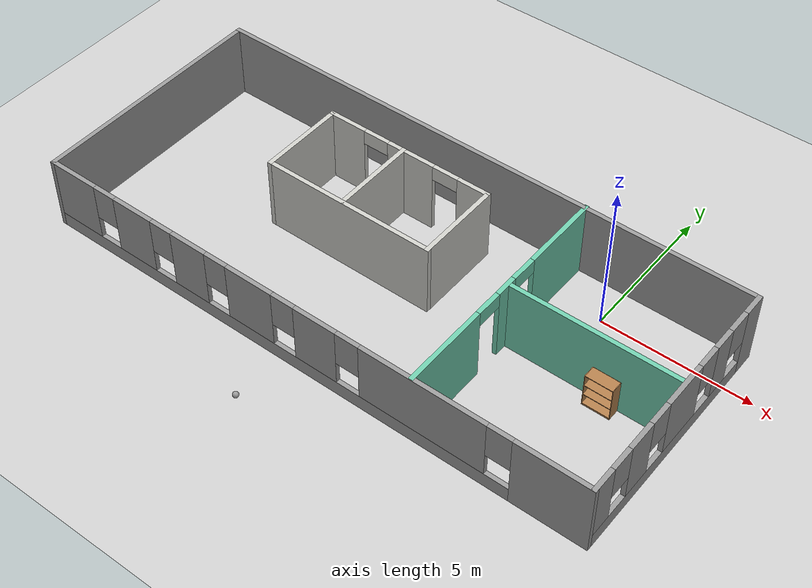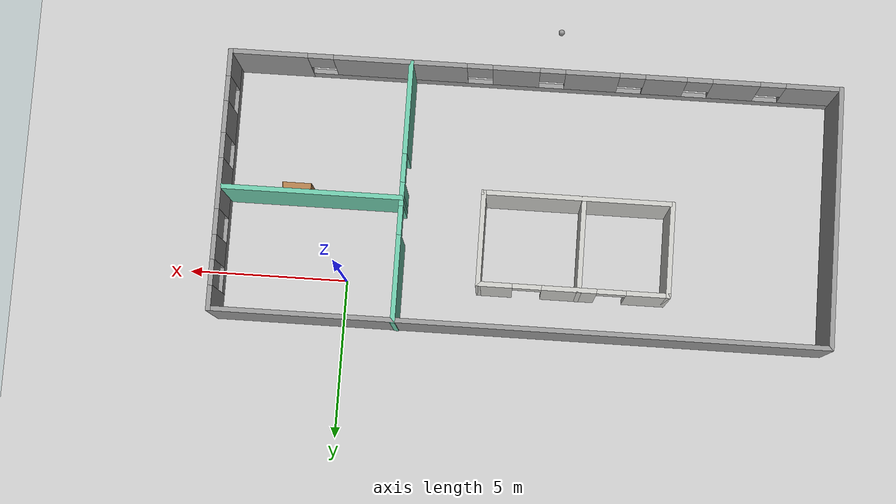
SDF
<sdf version="1.7">
 <world name="default">
  <model name="ground_plane">
   <static>1</static>
   <link name="link">
    <collision name="collision">
     <geometry><plane><normal>0 0 1</normal><size>100 100</size></plane></geometry>
     <surface>
      <contact><collide_bitmask>65535</collide_bitmask></contact>
      <friction><ode><mu>100</mu><mu2>50</mu2></ode></friction>
     </surface>
    </collision>
    <visual name="visual">
     <cast_shadows>0</cast_shadows>
     <geometry><plane><normal>0 0 1</normal><size>100 100</size></plane></geometry>
     <material>
      <script><uri>file://media/materials/scripts/gazebo.material</uri><name>Gazebo/Grey</name></script>
     </material>
    </visual>
   </link>
  </model>
  <model name="Building">
   <pose>-5.59672 -2.64945 0 0 -0 0</pose>
   <link name="Wall_10">
    <pose>0 -4.06159 0 0 -0 3.14159</pose>
    <visual name="Wall_10_Visual_0">
     <pose>-8.37928 0 1.25 0 -0 0</pose>
     <geometry><box><size>2.49144 0.15 2.5</size></box></geometry>
     <material>
      <script><uri>file://media/materials/scripts/gazebo.material</uri><name>Gazebo/Grey</name></script>
      <ambient>1 1 1 1</ambient>
     </material>
     <meta><layer>0</layer></meta>
    </visual>
    <collision name="Wall_10_Collision_0">
     <geometry><box><size>2.49144 0.15 2.5</size></box></geometry>
     <pose>-8.37928 0 1.25 0 -0 0</pose>
    </collision>
    <visual name="Wall_10_Visual_1">
     <pose>1.24572 0 0.25 0 -0 0</pose>
     <geometry><box><size>16.7586 0.15 0.5</size></box></geometry>
     <material>
      <script><uri>file://media/materials/scripts/gazebo.material</uri><name>Gazebo/Grey</name></script>
      <ambient>1 1 1 1</ambient>
     </material>
     <meta><layer>0</layer></meta>
    </visual>
    <collision name="Wall_10_Collision_1">
     <geometry><box><size>16.7586 0.15 0.5</size></box></geometry>
     <pose>1.24572 0 0.25 0 -0 0</pose>
    </collision>
    <visual name="Wall_10_Visual_2">
     <pose>-4.235 0 1.5 0 -0 0</pose>
     <geometry><box><size>4.19712 0.15 2</size></box></geometry>
     <material>
      <script><uri>file://media/materials/scripts/gazebo.material</uri><name>Gazebo/Grey</name></script>
      <ambient>1 1 1 1</ambient>
     </material>
     <meta><layer>0</layer></meta>
    </visual>
    <collision name="Wall_10_Collision_2">
     <geometry><box><size>4.19712 0.15 2</size></box></geometry>
     <pose>-4.235 0 1.5 0 -0 0</pose>
    </collision>
    <visual name="Wall_10_Visual_3">
     <pose>-0.596746 0 1.5 0 -0 0</pose>
     <geometry><box><size>1.47939 0.15 2</size></box></geometry>
     <material>
      <script><uri>file://media/materials/scripts/gazebo.material</uri><name>Gazebo/Grey</name></script>
      <ambient>1 1 1 1</ambient>
     </material>
     <meta><layer>0</layer></meta>
    </visual>
    <collision name="Wall_10_Collision_3">
     <geometry><box><size>1.47939 0.15 2</size></box></geometry>
     <pose>-0.596746 0 1.5 0 -0 0</pose>
    </collision>
    <visual name="Wall_10_Visual_4">
     <pose>1.78785 0 1.5 0 -0 0</pose>
     <geometry><box><size>1.68979 0.15 2</size></box></geometry>
     <material>
      <script><uri>file://media/materials/scripts/gazebo.material</uri><name>Gazebo/Grey</name></script>
      <ambient>1 1 1 1</ambient>
     </material>
     <meta><layer>0</layer></meta>
    </visual>
    <collision name="Wall_10_Collision_4">
     <geometry><box><size>1.68979 0.15 2</size></box></geometry>
     <pose>1.78785 0 1.5 0 -0 0</pose>
    </collision>
    <visual name="Wall_10_Visual_5">
     <pose>4.08477 0 1.5 0 -0 0</pose>
     <geometry><box><size>1.30405 0.15 2</size></box></geometry>
     <material>
      <script><uri>file://media/materials/scripts/gazebo.material</uri><name>Gazebo/Grey</name></script>
      <ambient>1 1 1 1</ambient>
     </material>
     <meta><layer>0</layer></meta>
    </visual>
    <collision name="Wall_10_Collision_5">
     <geometry><box><size>1.30405 0.15 2</size></box></geometry>
     <pose>4.08477 0 1.5 0 -0 0</pose>
    </collision>
    <visual name="Wall_10_Visual_6">
     <pose>6.27649 0 1.5 0 -0 0</pose>
     <geometry><box><size>1.47939 0.15 2</size></box></geometry>
     <material>
      <script><uri>file://media/materials/scripts/gazebo.material</uri><name>Gazebo/Grey</name></script>
      <ambient>1 1 1 1</ambient>
     </material>
     <meta><layer>0</layer></meta>
    </visual>
    <collision name="Wall_10_Collision_6">
     <geometry><box><size>1.47939 0.15 2</size></box></geometry>
     <pose>6.27649 0 1.5 0 -0 0</pose>
    </collision>
    <visual name="Wall_10_Visual_7">
     <pose>8.72059 0 1.5 0 -0 0</pose>
     <geometry><box><size>1.80882 0.15 2</size></box></geometry>
     <material>
      <script><uri>file://media/materials/scripts/gazebo.material</uri><name>Gazebo/Grey</name></script>
      <ambient>1 1 1 1</ambient>
     </material>
     <meta><layer>0</layer></meta>
    </visual>
    <collision name="Wall_10_Collision_7">
     <geometry><box><size>1.80882 0.15 2</size></box></geometry>
     <pose>8.72059 0 1.5 0 -0 0</pose>
    </collision>
    <visual name="Wall_10_Visual_8">
     <pose>-6.73356 0 1.9 0 -0 0</pose>
     <geometry><box><size>0.8 0.15 1.2</size></box></geometry>
     <material>
      <script><uri>file://media/materials/scripts/gazebo.material</uri><name>Gazebo/Grey</name></script>
      <ambient>1 1 1 1</ambient>
     </material>
     <meta><layer>0</layer></meta>
    </visual>
    <collision name="Wall_10_Collision_8">
     <geometry><box><size>0.8 0.15 1.2</size></box></geometry>
     <pose>-6.73356 0 1.9 0 -0 0</pose>
    </collision>
    <visual name="Wall_10_Visual_9">
     <pose>-1.73644 0 1.9 0 -0 0</pose>
     <geometry><box><size>0.8 0.15 1.2</size></box></geometry>
     <material>
      <script><uri>file://media/materials/scripts/gazebo.material</uri><name>Gazebo/Grey</name></script>
      <ambient>1 1 1 1</ambient>
     </material>
     <meta><layer>0</layer></meta>
    </visual>
    <collision name="Wall_10_Collision_9">
     <geometry><box><size>0.8 0.15 1.2</size></box></geometry>
     <pose>-1.73644 0 1.9 0 -0 0</pose>
    </collision>
    <visual name="Wall_10_Visual_10">
     <pose>0.542949 0 1.9 0 -0 0</pose>
     <geometry><box><size>0.8 0.15 1.2</size></box></geometry>
     <material>
      <script><uri>file://media/materials/scripts/gazebo.material</uri><name>Gazebo/Grey</name></script>
      <ambient>1 1 1 1</ambient>
     </material>
     <meta><layer>0</layer></meta>
    </visual>
    <collision name="Wall_10_Collision_10">
     <geometry><box><size>0.8 0.15 1.2</size></box></geometry>
     <pose>0.542949 0 1.9 0 -0 0</pose>
    </collision>
    <visual name="Wall_10_Visual_11">
     <pose>3.03274 0 1.9 0 -0 0</pose>
     <geometry><box><size>0.8 0.15 1.2</size></box></geometry>
     <material>
      <script><uri>file://media/materials/scripts/gazebo.material</uri><name>Gazebo/Grey</name></script>
      <ambient>1 1 1 1</ambient>
     </material>
     <meta><layer>0</layer></meta>
    </visual>
    <collision name="Wall_10_Collision_11">
     <geometry><box><size>0.8 0.15 1.2</size></box></geometry>
     <pose>3.03274 0 1.9 0 -0 0</pose>
    </collision>
    <visual name="Wall_10_Visual_12">
     <pose>5.1368 0 1.9 0 -0 0</pose>
     <geometry><box><size>0.8 0.15 1.2</size></box></geometry>
     <material>
      <script><uri>file://media/materials/scripts/gazebo.material</uri><name>Gazebo/Grey</name></script>
      <ambient>1 1 1 1</ambient>
     </material>
     <meta><layer>0</layer></meta>
    </visual>
    <collision name="Wall_10_Collision_12">
     <geometry><box><size>0.8 0.15 1.2</size></box></geometry>
     <pose>5.1368 0 1.9 0 -0 0</pose>
    </collision>
    <visual name="Wall_10_Visual_13">
     <pose>7.41618 0 1.9 0 -0 0</pose>
     <geometry><box><size>0.8 0.15 1.2</size></box></geometry>
     <material>
      <script><uri>file://media/materials/scripts/gazebo.material</uri><name>Gazebo/Grey</name></script>
      <ambient>1 1 1 1</ambient>
     </material>
     <meta><layer>0</layer></meta>
    </visual>
    <collision name="Wall_10_Collision_13">
     <geometry><box><size>0.8 0.15 1.2</size></box></geometry>
     <pose>7.41618 0 1.9 0 -0 0</pose>
    </collision>
   </link>
   <link name="Wall_11">
    <collision name="Wall_11_Collision">
     <geometry><box><size>8.25 0.15 2.5</size></box></geometry>
     <pose>0 0 1.25 0 -0 0</pose>
    </collision>
    <visual name="Wall_11_Visual">
     <pose>0 0 1.25 0 -0 0</pose>
     <geometry><box><size>8.25 0.15 2.5</size></box></geometry>
     <material>
      <script><uri>file://media/materials/scripts/gazebo.material</uri><name>Gazebo/Grey</name></script>
      <ambient>1 1 1 1</ambient>
     </material>
     <meta><layer>0</layer></meta>
    </visual>
    <pose>-9.55 -0.011594 0 0 -0 1.5708</pose>
   </link>
   <link name="Wall_13">
    <pose>3.88768 0.011594 0 0 0 -1.5708</pose>
    <visual name="Wall_13_Visual_0">
     <pose>-2.75451 0 1.25 0 -0 0</pose>
     <geometry><box><size>2.74098 0.15 2.5</size></box></geometry>
     <material>
      <script><uri>file://media/materials/scripts/gazebo.material</uri><name>Gazebo/Grey</name></script>
      <ambient>0.435294 0.796078 0.67451 1</ambient>
     </material>
     <meta><layer>0</layer></meta>
    </visual>
    <collision name="Wall_13_Collision_0">
     <geometry><box><size>2.74098 0.15 2.5</size></box></geometry>
     <pose>-2.75451 0 1.25 0 -0 0</pose>
    </collision>
    <visual name="Wall_13_Visual_1">
     <pose>-0.109467 0 1.25 0 -0 0</pose>
     <geometry><box><size>0.749111 0.15 2.5</size></box></geometry>
     <material>
      <script><uri>file://media/materials/scripts/gazebo.material</uri><name>Gazebo/Grey</name></script>
      <ambient>0.435294 0.796078 0.67451 1</ambient>
     </material>
     <meta><layer>0</layer></meta>
    </visual>
    <collision name="Wall_13_Collision_1">
     <geometry><box><size>0.749111 0.15 2.5</size></box></geometry>
     <pose>-0.109467 0 1.25 0 -0 0</pose>
    </collision>
    <visual name="Wall_13_Visual_2">
     <pose>2.64504 0 1.25 0 -0 0</pose>
     <geometry><box><size>2.95991 0.15 2.5</size></box></geometry>
     <material>
      <script><uri>file://media/materials/scripts/gazebo.material</uri><name>Gazebo/Grey</name></script>
      <ambient>0.435294 0.796078 0.67451 1</ambient>
     </material>
     <meta><layer>0</layer></meta>
    </visual>
    <collision name="Wall_13_Collision_2">
     <geometry><box><size>2.95991 0.15 2.5</size></box></geometry>
     <pose>2.64504 0 1.25 0 -0 0</pose>
    </collision>
    <visual name="Wall_13_Visual_3">
     <pose>-0.934023 0 2.25 0 -0 0</pose>
     <geometry><box><size>0.9 0.15 0.5</size></box></geometry>
     <material>
      <script><uri>file://media/materials/scripts/gazebo.material</uri><name>Gazebo/Grey</name></script>
      <ambient>0.435294 0.796078 0.67451 1</ambient>
     </material>
     <meta><layer>0</layer></meta>
    </visual>
    <collision name="Wall_13_Collision_3">
     <geometry><box><size>0.9 0.15 0.5</size></box></geometry>
     <pose>-0.934023 0 2.25 0 -0 0</pose>
    </collision>
    <visual name="Wall_13_Visual_4">
     <pose>0.715088 0 2.25 0 -0 0</pose>
     <geometry><box><size>0.9 0.15 0.5</size></box></geometry>
     <material>
      <script><uri>file://media/materials/scripts/gazebo.material</uri><name>Gazebo/Grey</name></script>
      <ambient>0.435294 0.796078 0.67451 1</ambient>
     </material>
     <meta><layer>0</layer></meta>
    </visual>
    <collision name="Wall_13_Collision_4">
     <geometry><box><size>0.9 0.15 0.5</size></box></geometry>
     <pose>0.715088 0 2.25 0 -0 0</pose>
    </collision>
   </link>
   <link name="Wall_15">
    <collision name="Wall_15_Collision">
     <geometry><box><size>5.75 0.15 2.5</size></box></geometry>
     <pose>0 0 1.25 0 -0 0</pose>
    </collision>
    <visual name="Wall_15_Visual">
     <pose>0 0 1.25 0 -0 0</pose>
     <geometry><box><size>5.75 0.15 2.5</size></box></geometry>
     <material>
      <script><uri>file://media/materials/scripts/gazebo.material</uri><name>Gazebo/Grey</name></script>
      <ambient>0.435294 0.796078 0.67451 1</ambient>
     </material>
     <meta><layer>0</layer></meta>
    </visual>
    <pose>6.68768 0.235507 0 0 -0 0</pose>
   </link>
   <link name="Wall_17">
    <pose>-1.56993 2.75145 0 0 -0 0</pose>
    <visual name="Wall_17_Visual_0">
     <pose>-2.31545 0 1.25 0 -0 0</pose>
     <geometry><box><size>1.36911 0.15 2.5</size></box></geometry>
     <material>
      <script><uri>file://media/materials/scripts/gazebo.material</uri><name>Gazebo/CeilingTiled</name></script>
      <ambient>1 1 1 1</ambient>
     </material>
     <meta><layer>0</layer></meta>
    </visual>
    <collision name="Wall_17_Collision_0">
     <geometry><box><size>1.36911 0.15 2.5</size></box></geometry>
     <pose>-2.31545 0 1.25 0 -0 0</pose>
    </collision>
    <visual name="Wall_17_Visual_1">
     <pose>0.119847 0 1.25 0 -0 0</pose>
     <geometry><box><size>1.70148 0.15 2.5</size></box></geometry>
     <material>
      <script><uri>file://media/materials/scripts/gazebo.material</uri><name>Gazebo/CeilingTiled</name></script>
      <ambient>1 1 1 1</ambient>
     </material>
     <meta><layer>0</layer></meta>
    </visual>
    <collision name="Wall_17_Collision_1">
     <geometry><box><size>1.70148 0.15 2.5</size></box></geometry>
     <pose>0.119847 0 1.25 0 -0 0</pose>
    </collision>
    <visual name="Wall_17_Visual_2">
     <pose>2.43529 0 1.25 0 -0 0</pose>
     <geometry><box><size>1.12941 0.15 2.5</size></box></geometry>
     <material>
      <script><uri>file://media/materials/scripts/gazebo.material</uri><name>Gazebo/CeilingTiled</name></script>
      <ambient>1 1 1 1</ambient>
     </material>
     <meta><layer>0</layer></meta>
    </visual>
    <collision name="Wall_17_Collision_2">
     <geometry><box><size>1.12941 0.15 2.5</size></box></geometry>
     <pose>2.43529 0 1.25 0 -0 0</pose>
    </collision>
    <visual name="Wall_17_Visual_3">
     <pose>-1.1809 0 2.25 0 -0 0</pose>
     <geometry><box><size>0.9 0.15 0.5</size></box></geometry>
     <material>
      <script><uri>file://media/materials/scripts/gazebo.material</uri><name>Gazebo/CeilingTiled</name></script>
      <ambient>1 1 1 1</ambient>
     </material>
     <meta><layer>0</layer></meta>
    </visual>
    <collision name="Wall_17_Collision_3">
     <geometry><box><size>0.9 0.15 0.5</size></box></geometry>
     <pose>-1.1809 0 2.25 0 -0 0</pose>
    </collision>
    <visual name="Wall_17_Visual_4">
     <pose>1.42059 0 2.25 0 -0 0</pose>
     <geometry><box><size>0.9 0.15 0.5</size></box></geometry>
     <material>
      <script><uri>file://media/materials/scripts/gazebo.material</uri><name>Gazebo/CeilingTiled</name></script>
      <ambient>1 1 1 1</ambient>
     </material>
     <meta><layer>0</layer></meta>
    </visual>
    <collision name="Wall_17_Collision_4">
     <geometry><box><size>0.9 0.15 0.5</size></box></geometry>
     <pose>1.42059 0 2.25 0 -0 0</pose>
    </collision>
   </link>
   <link name="Wall_18">
    <collision name="Wall_18_Collision">
     <geometry><box><size>3 0.15 2.5</size></box></geometry>
     <pose>0 0 1.25 0 -0 0</pose>
    </collision>
    <visual name="Wall_18_Visual">
     <pose>0 0 1.25 0 -0 0</pose>
     <geometry><box><size>3 0.15 2.5</size></box></geometry>
     <material>
      <script><uri>file://media/materials/scripts/gazebo.material</uri><name>Gazebo/CeilingTiled</name></script>
      <ambient>1 1 1 1</ambient>
     </material>
     <meta><layer>0</layer></meta>
    </visual>
    <pose>1.35507 1.32645 0 0 0 -1.5708</pose>
   </link>
   <link name="Wall_19">
    <collision name="Wall_19_Collision">
     <geometry><box><size>6 0.15 2.5</size></box></geometry>
     <pose>0 0 1.25 0 -0 0</pose>
    </collision>
    <visual name="Wall_19_Visual">
     <pose>0 0 1.25 0 -0 0</pose>
     <geometry><box><size>6 0.15 2.5</size></box></geometry>
     <material>
      <script><uri>file://media/materials/scripts/gazebo.material</uri><name>Gazebo/CeilingTiled</name></script>
      <ambient>1 1 1 1</ambient>
     </material>
     <meta><layer>0</layer></meta>
    </visual>
    <pose>-1.56993 -0.098551 0 0 -0 3.14159</pose>
   </link>
   <link name="Wall_20">
    <collision name="Wall_20_Collision">
     <geometry><box><size>3 0.15 2.5</size></box></geometry>
     <pose>0 0 1.25 0 -0 0</pose>
    </collision>
    <visual name="Wall_20_Visual">
     <pose>0 0 1.25 0 -0 0</pose>
     <geometry><box><size>3 0.15 2.5</size></box></geometry>
     <material>
      <script><uri>file://media/materials/scripts/gazebo.material</uri><name>Gazebo/CeilingTiled</name></script>
      <ambient>1 1 1 1</ambient>
     </material>
     <meta><layer>0</layer></meta>
    </visual>
    <pose>-4.49493 1.32645 0 0 -0 1.5708</pose>
   </link>
   <link name="Wall_23">
    <collision name="Wall_23_Collision">
     <geometry><box><size>3 0.15 2.5</size></box></geometry>
     <pose>0 0 1.25 0 -0 0</pose>
    </collision>
    <visual name="Wall_23_Visual">
     <pose>0 0 1.25 0 -0 0</pose>
     <geometry><box><size>3 0.15 2.5</size></box></geometry>
     <material>
      <script><uri>file://media/materials/scripts/gazebo.material</uri><name>Gazebo/CeilingTiled</name></script>
      <ambient>1 1 1 1</ambient>
     </material>
     <meta><layer>0</layer></meta>
    </visual>
    <pose>-1.75334 1.33013 0 0 0 -1.5708</pose>
   </link>
   <link name="Wall_8">
    <collision name="Wall_8_Collision">
     <geometry><box><size>19.25 0.15 2.5</size></box></geometry>
     <pose>0 0 1.25 0 -0 0</pose>
    </collision>
    <visual name="Wall_8_Visual">
     <pose>0 0 1.25 0 -0 0</pose>
     <geometry><box><size>19.25 0.15 2.5</size></box></geometry>
     <material>
      <script><uri>file://media/materials/scripts/gazebo.material</uri><name>Gazebo/Grey</name></script>
      <ambient>1 1 1 1</ambient>
     </material>
     <meta><layer>0</layer></meta>
    </visual>
    <pose>0 4.03841 0 0 -0 0</pose>
   </link>
   <link name="Wall_9">
    <pose>9.55 -0.011594 0 0 0 -1.5708</pose>
    <visual name="Wall_9_Visual_0">
     <pose>-3.73293 0 1.25 0 -0 0</pose>
     <geometry><box><size>0.784146 0.15 2.5</size></box></geometry>
     <material>
      <script><uri>file://media/materials/scripts/gazebo.material</uri><name>Gazebo/Grey</name></script>
      <ambient>1 1 1 1</ambient>
     </material>
     <meta><layer>0</layer></meta>
    </visual>
    <collision name="Wall_9_Collision_0">
     <geometry><box><size>0.784146 0.15 2.5</size></box></geometry>
     <pose>-3.73293 0 1.25 0 -0 0</pose>
    </collision>
    <visual name="Wall_9_Visual_1">
     <pose>0.392073 0 0.25 0 -0 0</pose>
     <geometry><box><size>7.46585 0.15 0.5</size></box></geometry>
     <material>
      <script><uri>file://media/materials/scripts/gazebo.material</uri><name>Gazebo/Grey</name></script>
      <ambient>1 1 1 1</ambient>
     </material>
     <meta><layer>0</layer></meta>
    </visual>
    <collision name="Wall_9_Collision_1">
     <geometry><box><size>7.46585 0.15 0.5</size></box></geometry>
     <pose>0.392073 0 0.25 0 -0 0</pose>
    </collision>
    <visual name="Wall_9_Visual_2">
     <pose>-2.15184 0 1.5 0 -0 0</pose>
     <geometry><box><size>0.778039 0.15 2</size></box></geometry>
     <material>
      <script><uri>file://media/materials/scripts/gazebo.material</uri><name>Gazebo/Grey</name></script>
      <ambient>1 1 1 1</ambient>
     </material>
     <meta><layer>0</layer></meta>
    </visual>
    <collision name="Wall_9_Collision_2">
     <geometry><box><size>0.778039 0.15 2</size></box></geometry>
     <pose>-2.15184 0 1.5 0 -0 0</pose>
    </collision>
    <visual name="Wall_9_Visual_3">
     <pose>-0.161753 0 1.5 0 -0 0</pose>
     <geometry><box><size>1.60213 0.15 2</size></box></geometry>
     <material>
      <script><uri>file://media/materials/scripts/gazebo.material</uri><name>Gazebo/Grey</name></script>
      <ambient>1 1 1 1</ambient>
     </material>
     <meta><layer>0</layer></meta>
    </visual>
    <collision name="Wall_9_Collision_3">
     <geometry><box><size>1.60213 0.15 2</size></box></geometry>
     <pose>-0.161753 0 1.5 0 -0 0</pose>
    </collision>
    <visual name="Wall_9_Visual_4">
     <pose>1.9423 0 1.5 0 -0 0</pose>
     <geometry><box><size>1.00598 0.15 2</size></box></geometry>
     <material>
      <script><uri>file://media/materials/scripts/gazebo.material</uri><name>Gazebo/Grey</name></script>
      <ambient>1 1 1 1</ambient>
     </material>
     <meta><layer>0</layer></meta>
    </visual>
    <collision name="Wall_9_Collision_4">
     <geometry><box><size>1.00598 0.15 2</size></box></geometry>
     <pose>1.9423 0 1.5 0 -0 0</pose>
    </collision>
    <visual name="Wall_9_Visual_5">
     <pose>3.68514 0 1.5 0 -0 0</pose>
     <geometry><box><size>0.879712 0.15 2</size></box></geometry>
     <material>
      <script><uri>file://media/materials/scripts/gazebo.material</uri><name>Gazebo/Grey</name></script>
      <ambient>1 1 1 1</ambient>
     </material>
     <meta><layer>0</layer></meta>
    </visual>
    <collision name="Wall_9_Collision_5">
     <geometry><box><size>0.879712 0.15 2</size></box></geometry>
     <pose>3.68514 0 1.5 0 -0 0</pose>
    </collision>
    <visual name="Wall_9_Visual_6">
     <pose>-2.94085 0 1.9 0 -0 0</pose>
     <geometry><box><size>0.8 0.15 1.2</size></box></geometry>
     <material>
      <script><uri>file://media/materials/scripts/gazebo.material</uri><name>Gazebo/Grey</name></script>
      <ambient>1 1 1 1</ambient>
     </material>
     <meta><layer>0</layer></meta>
    </visual>
    <collision name="Wall_9_Collision_6">
     <geometry><box><size>0.8 0.15 1.2</size></box></geometry>
     <pose>-2.94085 0 1.9 0 -0 0</pose>
    </collision>
    <visual name="Wall_9_Visual_7">
     <pose>-1.36282 0 1.9 0 -0 0</pose>
     <geometry><box><size>0.8 0.15 1.2</size></box></geometry>
     <material>
      <script><uri>file://media/materials/scripts/gazebo.material</uri><name>Gazebo/Grey</name></script>
      <ambient>1 1 1 1</ambient>
     </material>
     <meta><layer>0</layer></meta>
    </visual>
    <collision name="Wall_9_Collision_7">
     <geometry><box><size>0.8 0.15 1.2</size></box></geometry>
     <pose>-1.36282 0 1.9 0 -0 0</pose>
    </collision>
    <visual name="Wall_9_Visual_8">
     <pose>1.03931 0 1.9 0 -0 0</pose>
     <geometry><box><size>0.8 0.15 1.2</size></box></geometry>
     <material>
      <script><uri>file://media/materials/scripts/gazebo.material</uri><name>Gazebo/Grey</name></script>
      <ambient>1 1 1 1</ambient>
     </material>
     <meta><layer>0</layer></meta>
    </visual>
    <collision name="Wall_9_Collision_8">
     <geometry><box><size>0.8 0.15 1.2</size></box></geometry>
     <pose>1.03931 0 1.9 0 -0 0</pose>
    </collision>
    <visual name="Wall_9_Visual_9">
     <pose>2.84529 0 1.9 0 -0 0</pose>
     <geometry><box><size>0.8 0.15 1.2</size></box></geometry>
     <material>
      <script><uri>file://media/materials/scripts/gazebo.material</uri><name>Gazebo/Grey</name></script>
      <ambient>1 1 1 1</ambient>
     </material>
     <meta><layer>0</layer></meta>
    </visual>
    <collision name="Wall_9_Collision_9">
     <geometry><box><size>0.8 0.15 1.2</size></box></geometry>
     <pose>2.84529 0 1.9 0 -0 0</pose>
    </collision>
   </link>
   <static>1</static>
  </model>
  <model name="bookshelf_0">
   <static>1</static>
   <link name="link">
    <inertial><mass>1</mass></inertial>
    <collision name="back">
     <pose>0 0.005 0.6 0 -0 0</pose>
     <geometry><box><size>0.9 0.01 1.2</size></box></geometry>
    </collision>
    <visual name="visual1">
     <pose>0 0.005 0.6 0 -0 0</pose>
     <geometry><box><size>0.9 0.01 1.2</size></box></geometry>
     <material>
      <script><uri>file://media/materials/scripts/gazebo.material</uri><name>Gazebo/Wood</name></script>
     </material>
    </visual>
    <collision name="left_side">
     <pose>0.45 -0.195 0.6 0 -0 0</pose>
     <geometry><box><size>0.02 0.4 1.2</size></box></geometry>
    </collision>
    <visual name="visual2">
     <pose>0.45 -0.195 0.6 0 -0 0</pose>
     <geometry><box><size>0.02 0.4 1.2</size></box></geometry>
     <material>
      <script><uri>file://media/materials/scripts/gazebo.material</uri><name>Gazebo/Wood</name></script>
     </material>
    </visual>
    <collision name="right_side">
     <pose>-0.45 -0.195 0.6 0 -0 0</pose>
     <geometry><box><size>0.02 0.4 1.2</size></box></geometry>
    </collision>
    <visual name="visual3">
     <pose>-0.45 -0.195 0.6 0 -0 0</pose>
     <geometry><box><size>0.02 0.4 1.2</size></box></geometry>
     <material>
      <script><uri>file://media/materials/scripts/gazebo.material</uri><name>Gazebo/Wood</name></script>
     </material>
    </visual>
    <collision name="bottom">
     <pose>0 -0.195 0.03 0 -0 0</pose>
     <geometry><box><size>0.88 0.4 0.06</size></box></geometry>
    </collision>
    <visual name="visual4">
     <pose>0 -0.195 0.03 0 -0 0</pose>
     <geometry><box><size>0.88 0.4 0.06</size></box></geometry>
     <material>
      <script><uri>file://media/materials/scripts/gazebo.material</uri><name>Gazebo/Wood</name></script>
     </material>
    </visual>
    <collision name="top">
     <pose>0 -0.195 1.19 0 -0 0</pose>
     <geometry><box><size>0.88 0.4 0.02</size></box></geometry>
    </collision>
    <visual name="visual5">
     <pose>0 -0.195 1.19 0 -0 0</pose>
     <geometry><box><size>0.88 0.4 0.02</size></box></geometry>
     <material>
      <script><uri>file://media/materials/scripts/gazebo.material</uri><name>Gazebo/Wood</name></script>
     </material>
    </visual>
    <collision name="low_shelf">
     <pose>0 -0.195 0.43 0 -0 0</pose>
     <geometry><box><size>0.88 0.4 0.02</size></box></geometry>
    </collision>
    <visual name="visual6">
     <pose>0 -0.195 0.43 0 -0 0</pose>
     <geometry><box><size>0.88 0.4 0.02</size></box></geometry>
     <material>
      <script><uri>file://media/materials/scripts/gazebo.material</uri><name>Gazebo/Wood</name></script>
     </material>
    </visual>
    <collision name="high_shelf">
     <pose>0 -0.195 0.8 0 -0 0</pose>
     <geometry><box><size>0.88 0.4 0.02</size></box></geometry>
    </collision>
    <visual name="visual7">
     <pose>0 -0.195 0.8 0 -0 0</pose>
     <geometry><box><size>0.88 0.4 0.02</size></box></geometry>
     <material>
      <script><uri>file://media/materials/scripts/gazebo.material</uri><name>Gazebo/Wood</name></script>
     </material>
    </visual>
   </link>
   <pose>1.70261 -2.5002 0 0 -0 0</pose>
  </model>
  <model name="my_ball">
   <link name="link_0">
    <inertial>
     <mass>1</mass>
     <inertia><ixx>0.1</ixx><ixy>0</ixy><ixz>0</ixz><iyy>0.1</iyy><iyz>0</iyz><izz>0.1</izz></inertia>
    </inertial>
    <visual name="visual">
     <geometry><sphere><radius>0.1</radius></sphere></geometry>
     <material>
      <lighting>1</lighting>
      <script><uri>file://media/materials/scripts/gazebo.material</uri><name>Gazebo/Grey</name></script>
      <shader type="pixel"><normal_map>__default__</normal_map></shader>
      <ambient>1 1 1 1</ambient>
      <diffuse>1 1 1 1</diffuse>
      <specular>1 1 1 1</specular>
      <emissive>1 1 1 1</emissive>
     </material>
    </visual>
    <collision name="collision">
     <geometry><sphere><radius>0.1</radius></sphere></geometry>
     <surface>
      <friction>
       <ode><mu>1</mu><mu2>1</mu2><fdir1>0 0 0</fdir1><slip1>0</slip1><slip2>0</slip2></ode>
       <torsional>
        <coefficient>1</coefficient>
        <patch_radius>0</patch_radius>
        <surface_radius>0</surface_radius>
        <use_patch_radius>1</use_patch_radius>
        <ode><slip>0</slip></ode>
       </torsional>
      </friction>
      <bounce><restitution_coefficient>0</restitution_coefficient><threshold>1e+06</threshold></bounce>
      <contact>
       <collide_without_contact>0</collide_without_contact>
       <collide_without_contact_bitmask>1</collide_without_contact_bitmask>
       <collide_bitmask>1</collide_bitmask>
       <ode>
        <soft_cfm>0</soft_cfm>
        <soft_erp>0.2</soft_erp>
        <kp>1e+13</kp>
        <kd>1</kd>
        <max_vel>0.01</max_vel>
        <min_depth>0</min_depth>
       </ode>
       <bullet>
        <split_impulse>1</split_impulse>
        <split_impulse_penetration_threshold>-0.01</split_impulse_penetration_threshold>
        <soft_cfm>0</soft_cfm>
        <soft_erp>0.2</soft_erp>
        <kp>1e+13</kp>
        <kd>1</kd>
       </bullet>
      </contact>
     </surface>
    </collision>
   </link>
   <static>0</static>
   <pose>-6.38408 -8.60047 0.1 0 -0 0</pose>
  </model>
 </world>
</sdf>
